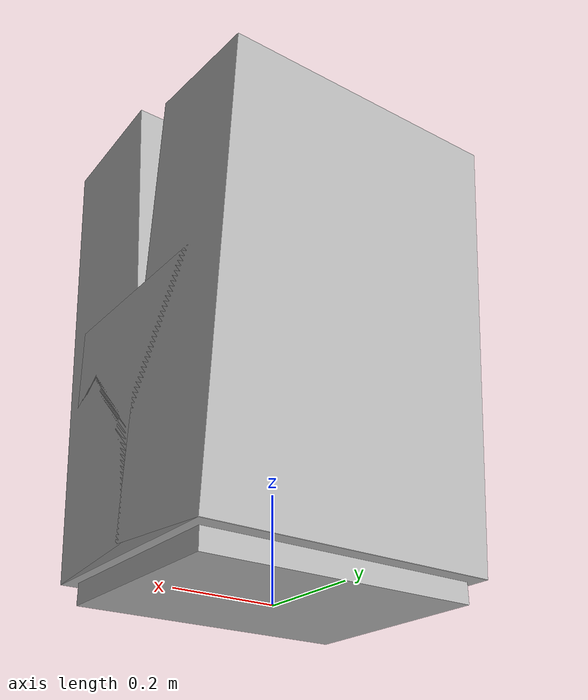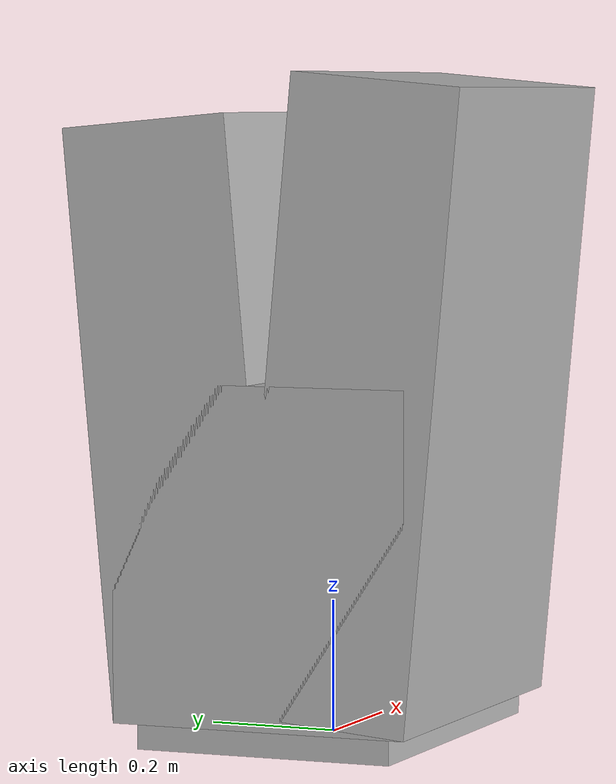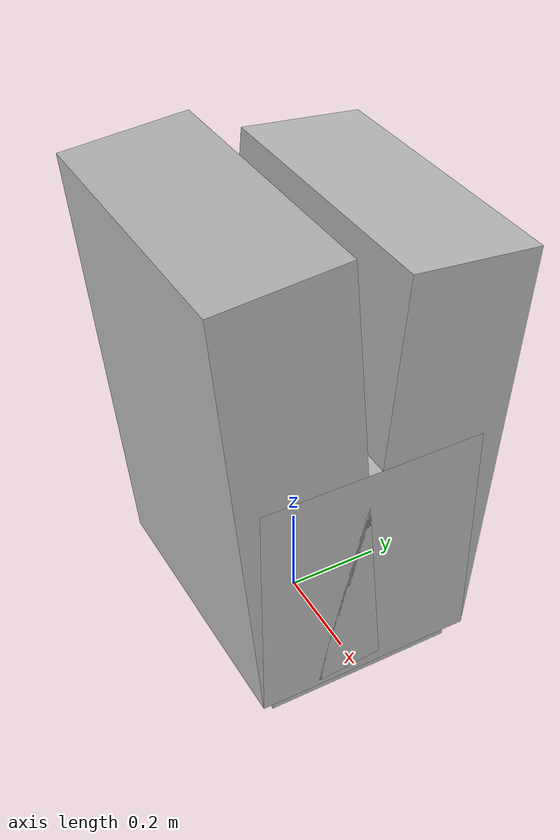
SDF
<?xml version="1.0" ?>
<sdf version="1.6">
  <model name="impuls/tue_trashbin">
    <static>true</static>
    <link name="1_link">
      <collision name="1_col">
        <geometry>
          <box>
            <size>0.55 0.4 0.04</size>
          </box>
        </geometry>
      </collision>
      <visual name="1_vis">
        <geometry>
          <box>
            <size>0.55 0.4 0.04</size>
          </box>
        </geometry>
      </visual>
      <pose>0.0 0.0 0.02 0 0 0</pose>
    </link>
    <link name="2_link">
      <collision name="2_col">
        <geometry>
          <box>
            <size>0.59 0.46 0.505</size>
          </box>
        </geometry>
      </collision>
      <visual name="2_vis">
        <geometry>
          <box>
            <size>0.59 0.46 0.505</size>
          </box>
        </geometry>
      </visual>
      <pose>0.0 0.0 0.2925 0 0 0</pose>
    </link>
    <link name="3_link">
      <collision name="3_col">
        <geometry>
          <box>
            <size>0.59 0.26 0.94</size>
          </box>
        </geometry>
      </collision>
      <visual name="3_vis">
        <geometry>
          <box>
            <size>0.59 0.26 0.94</size>
          </box>
        </geometry>
      </visual>
      <pose>0.0 -0.143 0.52 0.09 0 0</pose>
    </link>
    <link name="4_link">
      <collision name="4_col">
        <geometry>
          <box>
            <size>0.59 0.26 0.88</size>
          </box>
        </geometry>
      </collision>
      <visual name="4_vis">
        <geometry>
          <box>
            <size>0.59 0.26 0.88</size>
          </box>
        </geometry>
      </visual>
      <pose>0.0 0.14 0.49 -0.09 0 0</pose>
    </link>
    <link name="in_front_of">
      <virtual_volume name="in_front_of_vv">
        <geometry>
          <box>
            <size>0.2 0.25 0.01</size>
          </box>
        </geometry>
        <pose>0.795 0.0 0.005 0 0 0</pose>
      </virtual_volume>
    </link>
  </model>
</sdf>
